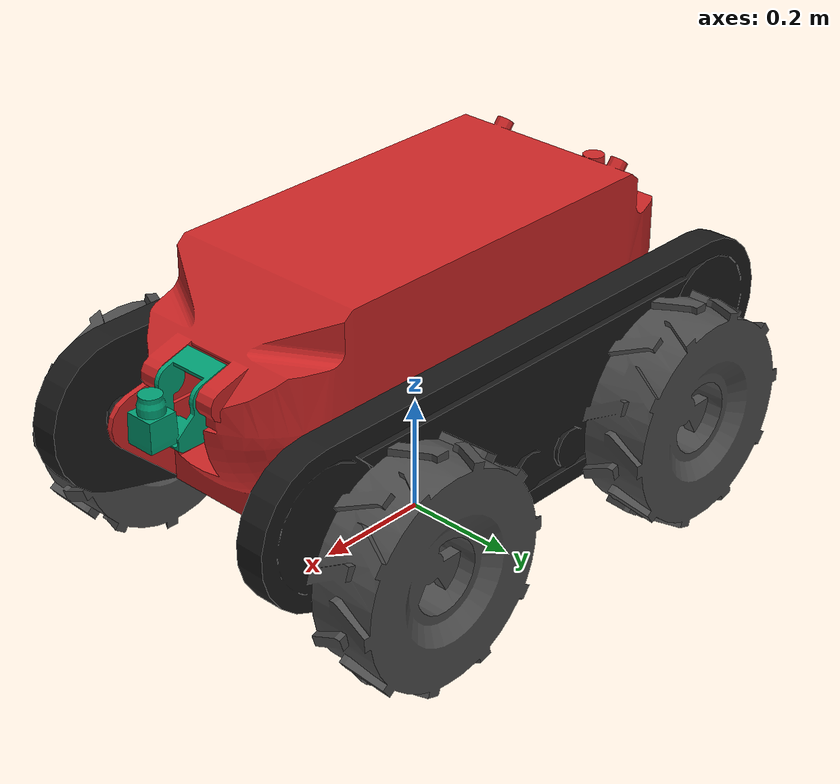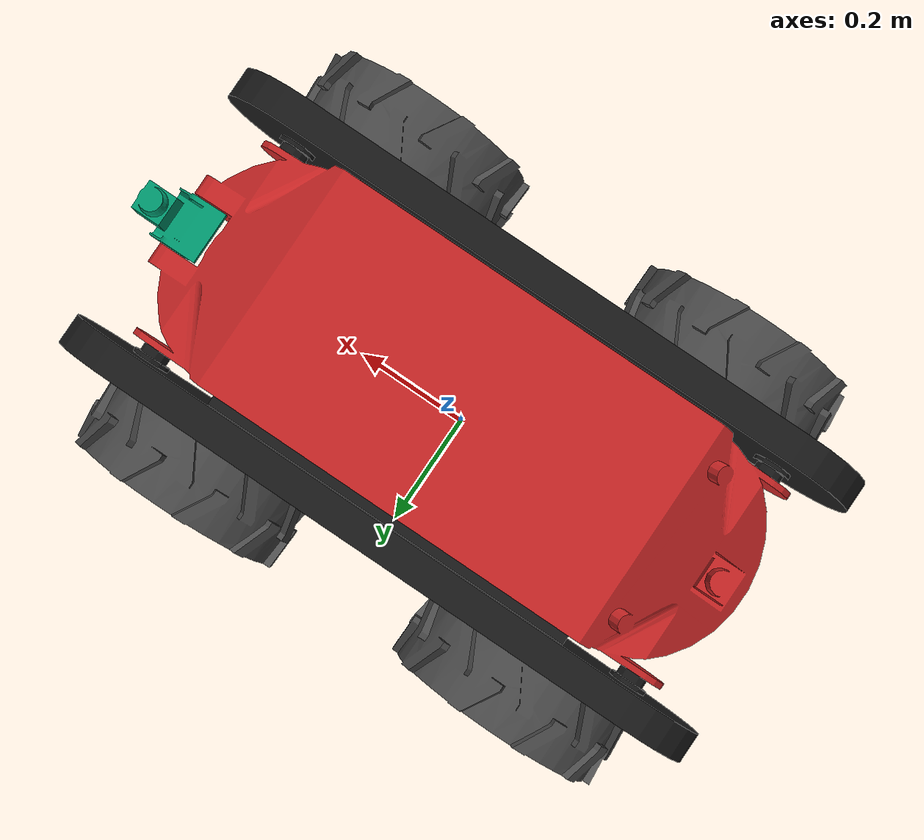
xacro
<?xml version="1.0"?>
<robot name="gball" xmlns:xacro="http://www.ros.org/wiki/xacro">

  <!-- Import all Gazebo-customization elements, including Gazebo colors -->
  <xacro:include filename="$(find guardian_description)/urdf/v7/guardian.gazebo" />

  <!-- Robot mechanical and motor parameters -->
  <xacro:property name="PI" value="3.1415926535897931"/>
  <xacro:property name="wheel_offset_x" value="0.300" />    <!-- x,y,z in base_footprint CS -->
  <xacro:property name="wheel_offset_y" value="0.265" />
  <xacro:property name="wheel_offset_z" value="0.0" />
  <xacro:property name="wheel_joint_damping" value="0.0" />
  <xacro:property name="wheel_joint_friction" value="0.0" />

  <xacro:property name="wheel_joint_effort_limit" value="200.0" />
  <xacro:property name="wheel_joint_velocity_limit" value="200.0" />
  <xacro:property name="wheel_mechanical_reduction" value="1.0" />

  <xacro:property name="ptz_joint_effort_limit" value="100.0" />
  <xacro:property name="ptz_joint_velocity_limit" value="100.0"/>
  <xacro:property name="ptz_joint_friction" value="0.1" />
  <xacro:property name="ptz_joint_damping" value="0.1" />
  <xacro:property name="ptz_mechanical_reduction" value="1.0" />

  <!-- Used for fixing robot to Gazebo 'base_link' -->

  <!-- BASE FOOTPRINT -->
  <!-- base_footprint is a fictitious link(frame) that is on the ground right below base_link origin,
             navigation stack depends on this frame -->
  <link name="base_footprint">
      <visual>
          <origin xyz="0 0 0" rpy="0 0 0" />
          <geometry>
             <box size="0.001 0.001 0.001" />
          </geometry>
      </visual>

      <collision>
          <origin xyz="0 0 0" rpy="0 0 0" />
          <geometry>
            <box size="0.001 0.001 0.001" />
         </geometry>
     </collision>
  </link>

  <joint name="base_footprint_joint" type="fixed">
     <!--NB: While you would think this would make it go up, it is oddly reversed.
      This moves the joint to 0,0,0 where we want it for rviz, etc. -->
     <!-- origin xyz="0 0 0.130" rpy="0 0 0" / -->
     <origin xyz="0 0 0.18" rpy="0 0 0" />
     <parent link="base_footprint"/>
     <child link="base_link" />
  </joint>

  <!-- BASE_LINK (RED) -->
  <link name="base_link">
    <inertial>
      <mass value="95.0" />
      <origin xyz="0 0 0" />
      <inertia  ixx="3.737" ixy="0.008"  ixz="-0.144"  iyy="8.311"  iyz="-0.004"  izz="8.893" />
    </inertial>
    <visual>
       <origin xyz="0 0 0" rpy="0 0 0" />
       <geometry>
	 <mesh filename="package://guardian_description/meshes/chassis/v7/chassisV7.dae"/>
       </geometry>
    </visual>
    <collision>
       <origin xyz="0 0 0" rpy="0 0 0 " />
       <geometry>
         <mesh filename="package://guardian_description/meshes/chassis/v7/chassisV7.dae"/>
       </geometry>
    </collision>
  </link>

  <!-- LEFT TRACK (BLACK) -->
  <link name="left_track">
    <inertial>
      <mass value="1.250" />
      <origin xyz="0 0 0" />
      <inertia  ixx="0.0109375" ixy="0.0"  ixz="0.0"  iyy="0.021125"  iyz="0.0"  izz="0.0109375" />
    </inertial>
    <visual>
        <origin xyz="0 0 0" rpy="0 0 0" />
        <geometry>
	 <mesh filename="package://guardian_description/meshes/others/v5/trackV5_l.dae"/>
        </geometry>
	<material name="black">
  		<color rgba="0.1 0.1 0.1 1"/>
      	</material>
    </visual>
    <collision>
       <origin xyz="0 0 0" rpy="0 0 0" />
       <geometry>
         <mesh filename="package://guardian_description/meshes/others/v5/trackV5_l.dae"/>
       </geometry>
    </collision>
  </link>

  <joint name="joint_left_track" type="fixed">
    <parent link="base_link"/>
    <child link="left_track"/>
    <origin xyz="0.0 0.0 0.0" rpy="0 0 0" />
  </joint>

  <!-- RIGHT TRACK (BLACK) -->
  <link name="right_track">
    <inertial>
      <mass value="1.250" />
      <origin xyz="0 0 0" />
      <inertia  ixx="0.0109375" ixy="0.0"  ixz="0.0"  iyy="0.021125"  iyz="0.0"  izz="0.0109375" />
    </inertial>
    <visual>
       <origin xyz="0 0 0" rpy="0 0 0" />
       <geometry>
	 <mesh filename="package://guardian_description/meshes/others/v5/trackV5_l.dae"/>
       </geometry>
	<material name="black">
		<color rgba="0.1 0.1 0.1 1"/>
      	</material>
    </visual>
    <collision>
       <origin xyz="0 0 0" rpy="0 0 0" />
       <geometry>
         <mesh filename="package://guardian_description/meshes/others/v5/trackV5_l.dae"/>
       </geometry>
    </collision>
  </link>

  <joint name="joint_right_track" type="fixed">
    <parent link="base_link"/>
    <child link="right_track"/>
    <origin xyz="0.0 0.0 0.0" rpy="0 0 3.1415926535" />
  </joint>

  <!-- BACK LEFT WHEEL (GREY) -->
  <link name="back_left_wheel">
    <inertial>
      <mass value="4.5" />
      <origin xyz="0 0 0" rpy="0 0 3.1416"/>
      <inertia  ixx="0.059" ixy="0.0"  ixz="0.0"  iyy="0.055"  iyz="0.0"  izz="0.059" />
    </inertial>
    <visual>
       <origin xyz="0 0 0" rpy="0 0 3.1416" />
       <geometry>
	 <mesh filename="package://guardian_description/meshes/wheel.dae"/>
       </geometry>
	<material name="grey">
		<color rgba="0.3 0.3 0.3 1"/>
      	</material>
    </visual>
    <collision>
       <origin xyz="0 0 0" rpy="0 0 3.1416" />
       <geometry>
         <mesh filename="package://guardian_description/meshes/wheel.dae"/>
       </geometry>
    </collision>
  </link>

  <joint name="joint_back_left_wheel" type="continuous">
    <parent link="base_link"/>
    <child link="back_left_wheel"/>
    <origin xyz="-${wheel_offset_x} ${wheel_offset_y} 0" rpy="0 0 0" />
    <axis xyz="0 1 0" rpy="0 0 0" />
    <limit effort="${wheel_joint_effort_limit}" velocity="${wheel_joint_velocity_limit}"/>
    <joint_properties damping="${wheel_joint_damping}" friction="{wheel_joint_friction}"/>
  </joint>

  <transmission name="joint_blw_trans">
	 <type>transmission_interface/SimpleTransmission</type>
     <joint name="joint_back_left_wheel" />
     <actuator name="joint_blw_motor">
	    <hardwareInterface>EffortJointInterface</hardwareInterface>
        <mechanicalReduction>${wheel_mechanical_reduction}</mechanicalReduction>
     </actuator>
  </transmission>

  <!-- BACK RIGHT WHEEL (BLACK) -->
  <link name="back_right_wheel">
    <inertial>
      <mass value="4.5" />
      <origin xyz="0 0 0" rpy="0 0 0"/>
      <inertia  ixx="0.059" ixy="0.0"  ixz="0.0"  iyy="0.055"  iyz="0.0"  izz="0.059" />
    </inertial>

    <visual>
       <origin xyz="0 0 0" rpy="0 0 0" />
       <geometry>
         <mesh filename="package://guardian_description/meshes/wheel.dae"/>
       </geometry>
	<material name="gray">
		<color rgba="0.3 0.3 0.3 1"/>
      	</material>
    </visual>
    <collision>
       <origin xyz="0 0 0" rpy="0 0 0" />
       <geometry>
         <mesh filename="package://guardian_description/meshes/wheel.dae"/>
       </geometry>
    </collision>
  </link>

  <joint name="joint_back_right_wheel" type="continuous">
    <parent link="base_link"/>
    <child link="back_right_wheel"/>
    <origin xyz="-${wheel_offset_x} -${wheel_offset_y} 0" rpy="0 0 0" />
    <axis xyz="0 1 0" rpy="0 0 0" />
    <limit effort="${wheel_joint_effort_limit}" velocity="${wheel_joint_velocity_limit}"/>
    <joint_properties damping="${wheel_joint_damping}" friction="{wheel_joint_friction}"/>
  </joint>

  <transmission name="joint_brw_trans">
    <type>transmission_interface/SimpleTransmission</type>
    <joint name="joint_back_right_wheel" />
    <actuator name="joint_brw_motor">
	   <hardwareInterface>EffortJointInterface</hardwareInterface>
       <mechanicalReduction>${wheel_mechanical_reduction}</mechanicalReduction>
    </actuator>
  </transmission>

  <!-- FRONT LEFT WHEEL (GREY) -->
  <link name="front_left_wheel">
    <inertial>
      <mass value="4.5" />
      <origin xyz="0 0 0" rpy="0 0 3.1416"/>
      <inertia  ixx="0.059" ixy="0.0"  ixz="0.0"  iyy="0.055"  iyz="0.0"  izz="0.059" />
    </inertial>

    <visual>
       <origin xyz="0 0 0" rpy="0 0 3.1416" />
       <geometry>
         <mesh filename="package://guardian_description/meshes/wheel.dae"/>
       </geometry>
	<material name="grey">
		<color rgba="0.3 0.3 0.3 1"/>
      	</material>
    </visual>
    <collision>
       <origin xyz="0 0 0" rpy="0 0 3.1416" />
       <geometry>
         <mesh filename="package://guardian_description/meshes/wheel.dae"/>
       </geometry>
    </collision>
  </link>

  <joint name="joint_front_left_wheel" type="continuous">
    <parent link="base_link"/>
    <child link="front_left_wheel"/>
    <origin xyz="${wheel_offset_x} ${wheel_offset_y} 0" rpy="0 0 0" />
    <axis xyz="0 1 0" rpy="0 0 0" />
    <limit effort="${wheel_joint_effort_limit}" velocity="${wheel_joint_velocity_limit}"/>
    <joint_properties damping="${wheel_joint_damping}" friction="{wheel_joint_friction}"/>
  </joint>

  <transmission name="joint_flw_trans">
	 <type>transmission_interface/SimpleTransmission</type>
     <joint name="joint_front_left_wheel" />
     <actuator name="joint_flw_motor">
	   <hardwareInterface>EffortJointInterface</hardwareInterface>
       <mechanicalReduction>${wheel_mechanical_reduction}</mechanicalReduction>
     </actuator>
  </transmission>

  <!-- FRONT RIGHT WHEEL (GREY) -->
  <link name="front_right_wheel">
    <inertial>
      <mass value="4.5" />
      <origin xyz="0 0 0" rpy="0 0 0"/>
      <inertia  ixx="0.059" ixy="0.0"  ixz="0.0"  iyy="0.055"  iyz="0.0"  izz="0.059" />
    </inertial>

    <visual>
       <origin xyz="0 0 0" rpy="0 0 0" />
       <geometry>
         <mesh filename="package://guardian_description/meshes/wheel.dae"/>
       </geometry>
	<material name="grey">
		<color rgba="0.3 0.3 0.3 1"/>
      	</material>
    </visual>
    <collision>
       <origin xyz="0 0 0" rpy="0 0 0" />
       <geometry>
         <mesh filename="package://guardian_description/meshes/wheel.dae"/>
       </geometry>
    </collision>
  </link>

  <joint name="joint_front_right_wheel" type="continuous">
    <parent link="base_link"/>
    <child link="front_right_wheel"/>
    <origin xyz="${wheel_offset_x} -${wheel_offset_y} 0" rpy="0 0 0" />
    <axis xyz="0 1 0" rpy="0 0 0" />
    <limit effort="${wheel_joint_effort_limit}" velocity="${wheel_joint_velocity_limit}"/>
    <joint_properties damping="${wheel_joint_damping}" friction="{wheel_joint_friction}"/>
  </joint>

  <transmission name="joint_frw_trans">
	 <type>transmission_interface/SimpleTransmission</type>
     <joint name="joint_front_right_wheel" />
     <actuator name="joint_frw_motor">
	   <hardwareInterface>EffortJointInterface</hardwareInterface>
       <mechanicalReduction>${wheel_mechanical_reduction}</mechanicalReduction>
     </actuator>
  </transmission>

  <!-- HOKUYO BACK SENSOR -->
  <joint name="hokuyo_back_laser_joint" type="fixed">
     <axis xyz="0 1 0" />
     <origin xyz="-0.43171 0 0.29163" rpy="0 0 ${PI}"/>
     <parent link="base_link"/>
     <child link="hokuyo_back_laser_link"/>
  </joint>
  <!-- Hokuyo Laser -->
  <link name="hokuyo_back_laser_link">
    <collision>
      <origin xyz="0 0 0" rpy="0 0 0"/>
      <geometry>
	<box size="0.1 0.1 0.1"/>
      </geometry>
    </collision>

    <inertial>
      <mass value="1e-5" />
      <origin xyz="0 0 0" rpy="0 0 0"/>
      <inertia ixx="1e-6" ixy="0" ixz="0" iyy="1e-6" iyz="0" izz="1e-6" />
    </inertial>
  </link>

  <joint name="laser_tilt_mount_joint" type="fixed">
     <axis xyz="0 1 0" />
     <origin xyz="0.46781 0 0.24299"/>
     <parent link="base_link"/>
     <child link="laser_tilt_mount_link"/>
     <limit effort="30" lower="-2.6" upper="2.6" velocity="2.0"/>
	 <dynamics damping="100"/>
  </joint>
  <link name="laser_tilt_mount_link"></link>

  <!-- HOKUYO FRONTAL ROTATION -->
  <joint name="laser_tilt_joint" type="revolute">
     <axis xyz="0 1 0" />
     <origin xyz="0 0 0"/>
     <parent link="laser_tilt_mount_link"/>
     <child link="laser_tilt_link"/>
     <limit effort="30" lower="-2.6" upper="2.6" velocity="2.0"/>
	 <dynamics damping="100"/>
  </joint>
  <transmission name="hokuyo_frontal_laser_rotation_transmission" type="pr2_mechanism_model/SimpleTransmission">
	<actuator name="hokuyo_frontal_laser_rotation_joint_motor"/>
	<joint name="hokuyo_frontal_laser_rotation_joint"/>
	<mechanicalReduction>1</mechanicalReduction>
	<motorTorqueConstant>1</motorTorqueConstant>
  </transmission>

  <link name="laser_tilt_link">
     <visual>
       <origin xyz="0 0 0" rpy="0 0 0" />
       <geometry>
	 <mesh filename="package://guardian_description/meshes/chassis/v7/hokuyo_tilt.dae"/>
       </geometry>
    </visual>
    <collision>
       <origin xyz="0 0 0" rpy="0 0 0 " />
       <geometry>
         <mesh filename="package://guardian_description/meshes/chassis/v7/hokuyo_tilt.dae"/>
       </geometry>
    </collision>

    <inertial>
      <mass value="1e-5" />
      <origin xyz="0 0 0" rpy="0 0 0"/>
      <inertia ixx="1e-6" ixy="0" ixz="0" iyy="1e-6" iyz="0" izz="1e-6" />
    </inertial>
  </link>

  <!-- HOKUYO FRONTAL SENSOR -->
  <joint name="hokuyo_frontal_laser_joint" type="fixed">
     <axis xyz="0 1 0" />
     <origin xyz="0.066 0 0.0"/>
     <parent link="laser_tilt_link"/>
     <child link="hokuyo_frontal_laser_link"/>
  </joint>
  <!-- Hokuyo Laser -->
  <link name="hokuyo_frontal_laser_link">
    <collision>
      <origin xyz="0 0 0" rpy="0 0 0"/>
      <geometry>
	<box size="0.1 0.1 0.1"/>
      </geometry>
    </collision>

    <inertial>
      <mass value="1e-5" />
      <origin xyz="0 0 0" rpy="0 0 0"/>
      <inertia ixx="1e-6" ixy="0" ixz="0" iyy="1e-6" iyz="0" izz="1e-6" />
    </inertial>
  </link>

  <!-- IMU SENSOR -->
  <joint name="imu_joint" type="fixed">
      <axis xyz="1 0 0"/>
      <origin xyz="0 0 0.2825"/>
      <parent link="base_link"/>
      <child link="imu_link"/>
  </joint>

  <link name="imu_link">
      <inertial>
        <mass value="0.001"/>
        <origin rpy="0 0 0" xyz="0 0 0"/>
        <inertia ixx="0.0001" ixy="0" ixz="0" iyy="0.000001" iyz="0" izz="0.0001"/>
      </inertial>
      <visual>
        <origin rpy="0 0 0" xyz="0 0 0"/>
        <geometry>
          <box size="0.001 0.001 0.001"/>
        </geometry>
      </visual>
      <collision>
        <origin rpy="0 0 0" xyz="0 0 0"/>
        <geometry>
          <box size=".001 .001 .001"/>
        </geometry>
      </collision>
  </link>

</robot>
